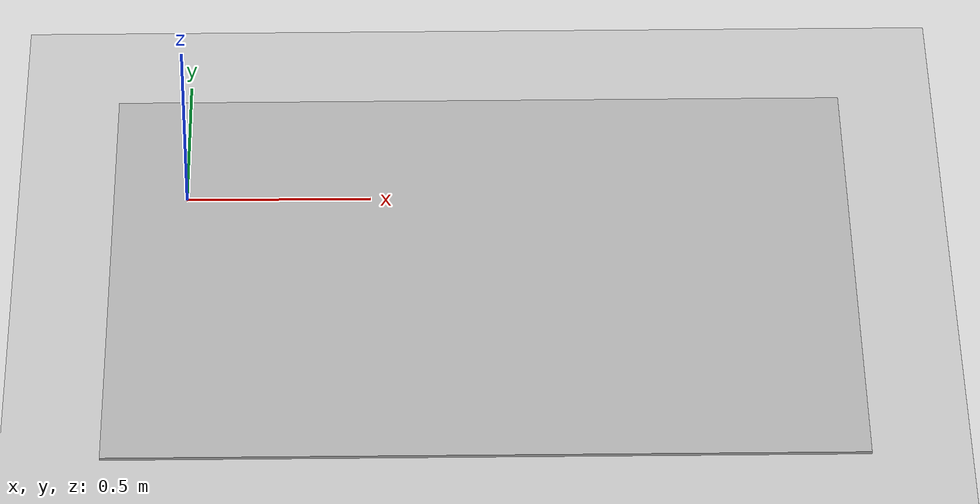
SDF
<?xml version="1.0" ?>
<sdf version="1.4">
  <world name="default">
    <include>
      <uri>model://ground_plane</uri>
    </include>

    <include>
      <uri>model://sun</uri>

    </include>
    <model name='platform'>
      <link name='link'>
        <inertial>
          <mass>80</mass>
          <inertia>
            <ixx>0.166667</ixx>
            <ixy>0</ixy>
            <ixz>0</ixz>
            <iyy>0.166667</iyy>
            <iyz>0</iyz>
            <izz>0.166667</izz>
          </inertia>
          <pose>0 0 0 0 -0 0</pose>
        </inertial>
        <self_collide>1</self_collide>
        <enable_wind>0</enable_wind>
        <kinematic>0</kinematic>
        <pose>0 0 0 0 -0 0</pose>
        <gravity>1</gravity>
        <visual name='visual'>
          <geometry>
            <box>
              <size>2 1.5 0.01</size>
            </box>
          </geometry>
          <material>
            <script>
              <uri>model://platform/materials/scripts/</uri>
              <uri>model://platform/materials/textures</uri>
              <name>line/Image</name>
            </script>
            <shader type='vertex'>
              <normal_map>__default__</normal_map>
            </shader>
          </material>
          <pose>0 0 0 0 -0 0</pose>
          <transparency>0</transparency>
          <cast_shadows>1</cast_shadows>
        </visual>
        <collision name='collision'>
          <laser_retro>0</laser_retro>
          <max_contacts>10</max_contacts>
          <pose>0 0 0 0 -0 0</pose>
          <geometry>
            <box>
              <size>2 1.5 0.01</size>
            </box>
          </geometry>
          <surface>
            <friction>
              <ode>
                <mu>1</mu>
                <mu2>1</mu2>
                <fdir1>0 0 0</fdir1>
                <slip1>0</slip1>
                <slip2>0</slip2>
              </ode>
              <torsional>
                <coefficient>1</coefficient>
                <patch_radius>0</patch_radius>
                <surface_radius>0</surface_radius>
                <use_patch_radius>1</use_patch_radius>
                <ode>
                  <slip>0</slip>
                </ode>
              </torsional>
            </friction>
            <bounce>
              <restitution_coefficient>0</restitution_coefficient>
              <threshold>1e+06</threshold>
            </bounce>
            <contact>
              <collide_without_contact>0</collide_without_contact>
              <collide_without_contact_bitmask>1</collide_without_contact_bitmask>
              <collide_bitmask>1</collide_bitmask>
              <ode>
                <soft_cfm>0</soft_cfm>
                <soft_erp>0.2</soft_erp>
                <kp>1e+13</kp>
                <kd>1</kd>
                <max_vel>0.01</max_vel>
                <min_depth>0</min_depth>
              </ode>
              <bullet>
                <split_impulse>1</split_impulse>
                <split_impulse_penetration_threshold>-0.01</split_impulse_penetration_threshold>
                <soft_cfm>0</soft_cfm>
                <soft_erp>0.2</soft_erp>
                <kp>1e+13</kp>
                <kd>1</kd>
              </bullet>
            </contact>
          </surface>
        </collision>
      </link>
      <static>1</static>
      <allow_auto_disable>1</allow_auto_disable>
      <pose>0.80 -0.32 0 0 -0 0</pose>
    </model>

  </world>
</sdf>
